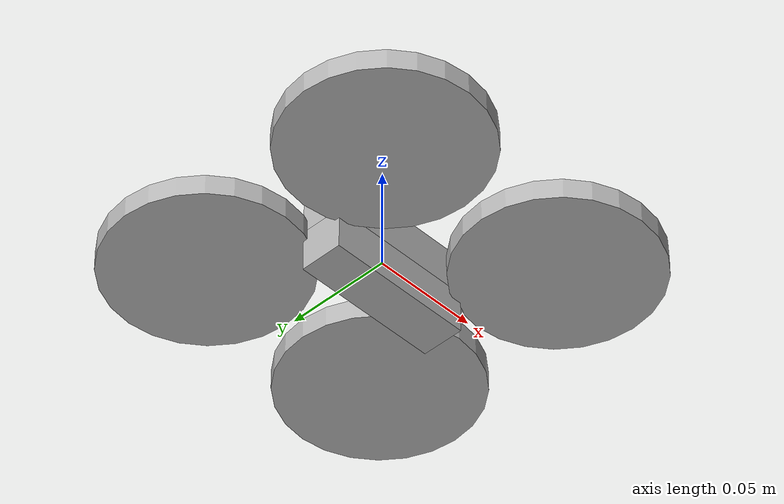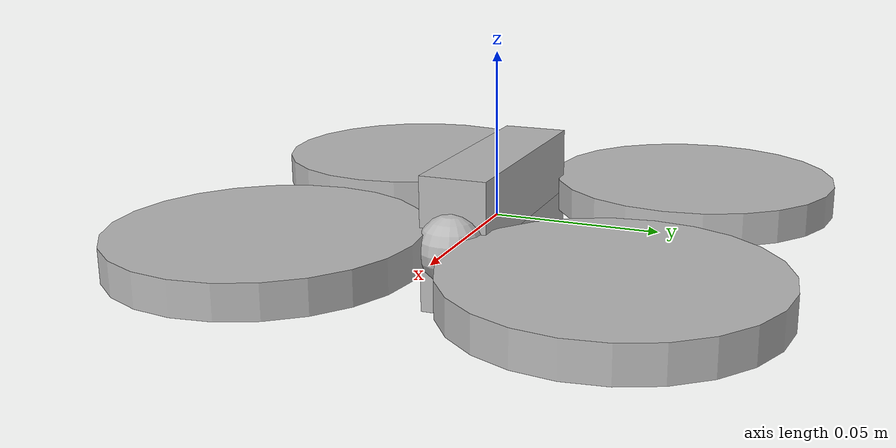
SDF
<sdf version='1.7'>
  <model name='tello_drone'>
    <link name='base_link_drone'>
      <inertial>
        <pose>3e-06 0 0 0 -0 0</pose>
        <mass>0.10001</mass>
        <inertia>
          <ixx>0.000291833</ixx>
          <ixy>0</ixy>
          <ixz>0</ixz>
          <iyy>0.000541012</iyy>
          <iyz>0</iyz>
          <izz>0.000291845</izz>
        </inertia>
      </inertial>
      <collision name='base_link_drone_fixed_joint_lump__collision_collision'>
        <pose>0 0 0 0 -0 0</pose>
        <geometry>
          <box>
            <size>0.18 0.18 0.05</size>
          </box>
        </geometry>
      </collision>
      <collision name='base_link_drone_fixed_joint_lump__camera_link_drone_collision_1'>
        <pose>0.035 0 0 0 -0 0</pose>
        <geometry>
          <sphere>
            <radius>0.01</radius>
          </sphere>
        </geometry>
        <surface>
          <contact>
            <ode/>
          </contact>
          <friction>
            <ode/>
          </friction>
        </surface>
      </collision>
      <visual name='base_link_drone_visual'>
        <pose>0 0 0.01 0 -0 0</pose>
        <geometry>
          <box>
            <size>0.07 0.02 0.02</size>
          </box>
        </geometry>
      </visual>
      <visual name='base_link_drone_visual_1'>
        <pose>0 0 -0.01 0 -0 0</pose>
        <geometry>
          <box>
            <size>0.07 0.02 0.02</size>
          </box>
        </geometry>
      </visual>
      <visual name='base_link_drone_visual_2'>
        <pose>0.05 -0.05 0 0 -0 0</pose>
        <geometry>
          <cylinder>
            <length>0.01</length>
            <radius>0.045</radius>
          </cylinder>
        </geometry>
      </visual>
      <visual name='base_link_drone_visual_3'>
        <pose>-0.05 0.05 0 0 -0 0</pose>
        <geometry>
          <cylinder>
            <length>0.01</length>
            <radius>0.045</radius>
          </cylinder>
        </geometry>
      </visual>
      <visual name='base_link_drone_visual_4'>
        <pose>-0.05 -0.05 0 0 -0 0</pose>
        <geometry>
          <cylinder>
            <length>0.01</length>
            <radius>0.045</radius>
          </cylinder>
        </geometry>
      </visual>
      <visual name='base_link_drone_visual_5'>
        <pose>0.05 0.05 0 0 -0 0</pose>
        <geometry>
          <cylinder>
            <length>0.01</length>
            <radius>0.045</radius>
          </cylinder>
        </geometry>
      </visual>
      <visual name='base_link_drone_fixed_joint_lump__camera_link_drone_visual_6'>
        <pose>0.035 0 0 0 -0 0</pose>
        <geometry>
          <sphere>
            <radius>0.01</radius>
          </sphere>
        </geometry>
      </visual>
      <sensor name='/camera/topic' type='camera'>  <!--Topicccccccccccccccccccccccccccccccccccccccccccccccccccccccccccccc -->
        <update_rate>30</update_rate>
        <camera name='head'>
          <horizontal_fov>0.96</horizontal_fov>
          <image>
            <width>960</width>
            <height>720</height>
            <format>R8G8B8</format>
          </image>
          <clip>
            <near>0.1</near>
            <far>300</far>
          </clip>
          <noise>
            <type>gaussian</type>
            <mean>0</mean>
            <stddev>0.007</stddev>
          </noise>
        </camera>
        <plugin name='camera_controller_drone' filename='libgazebo_ros_camera.so'>
          <alwaysOn>1</alwaysOn>
          <updateRate>0.0</updateRate>
          <cameraName>this_is_ignored</cameraName>
          <imageTopicName>image_raw</imageTopicName>
          <cameraInfoTopicName>camera_info</cameraInfoTopicName>
          <frameName>camera_link_drone</frameName>
          <hackBaseline>0.07</hackBaseline>
          <distortionK1>0.0</distortionK1>
          <distortionK2>0.0</distortionK2>
          <distortionK3>0.0</distortionK3>
          <distortionT1>0.0</distortionT1>
          <distortionT2>0.0</distortionT2>
        </plugin>
        <pose>0.035 0 0 0 -0 0</pose>
      </sensor>
    </link>
    <static>0</static>
    <plugin name='TelloPlugin' filename='libTelloPlugin.so'>
      <namespace>/camera/topic</namespace>
      <parameter name='use_sim_time' type='bool'>1</parameter>
      <link_name>base_link_drone</link_name>
      <center_of_mass>0 0 0</center_of_mass>
    </plugin>
  </model>
</sdf>
